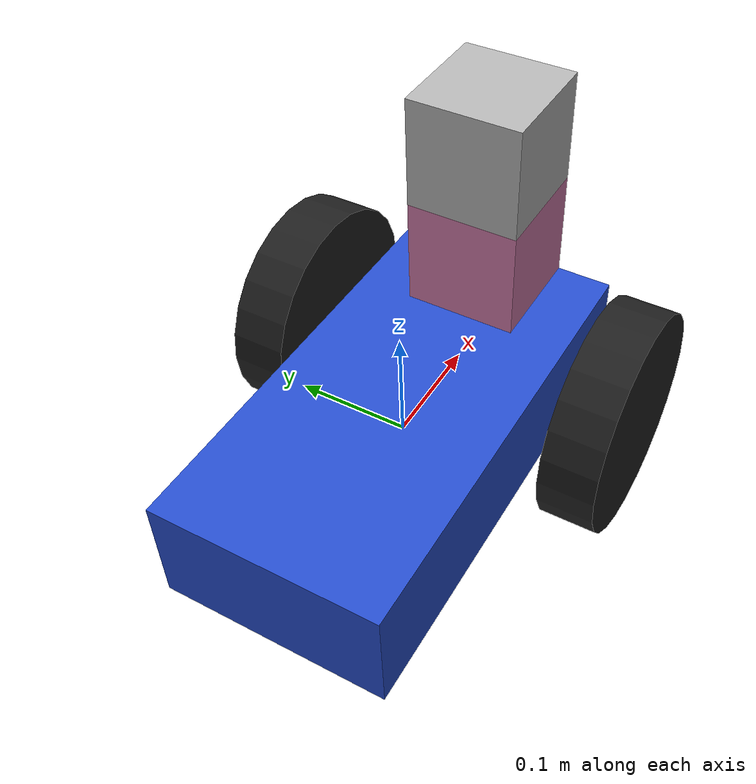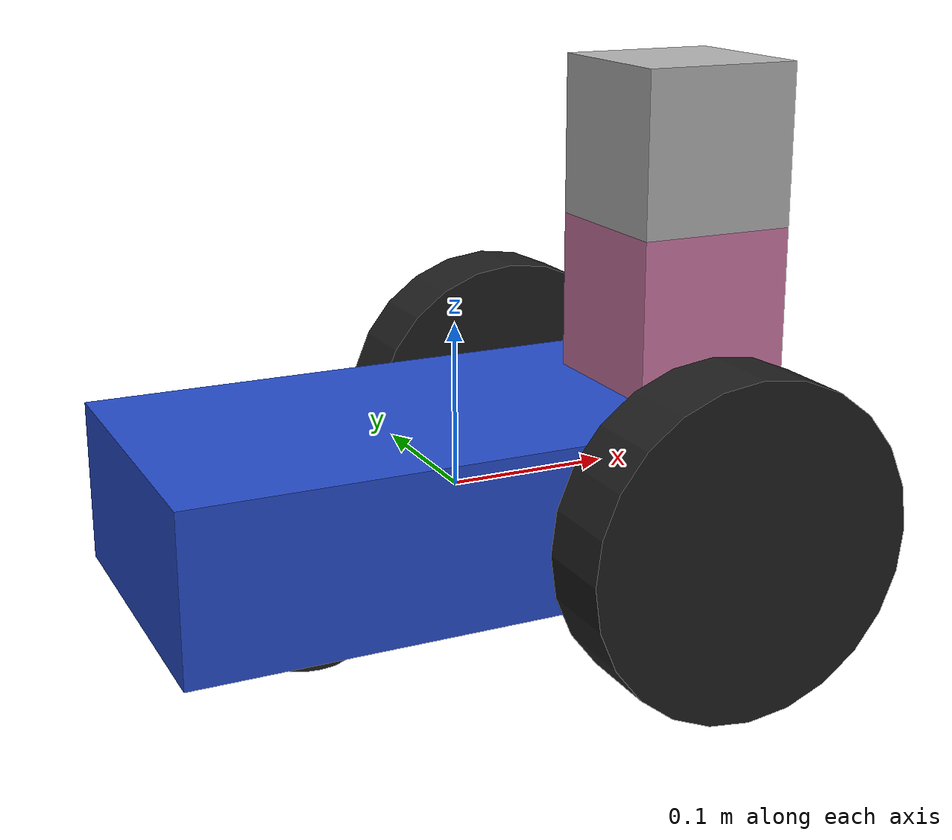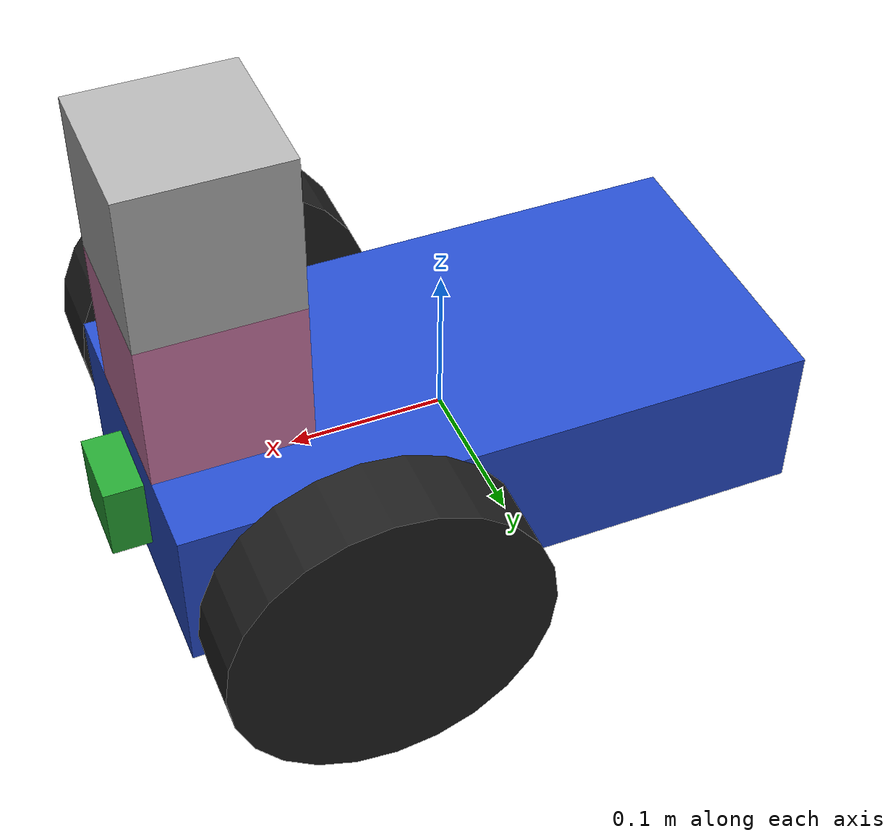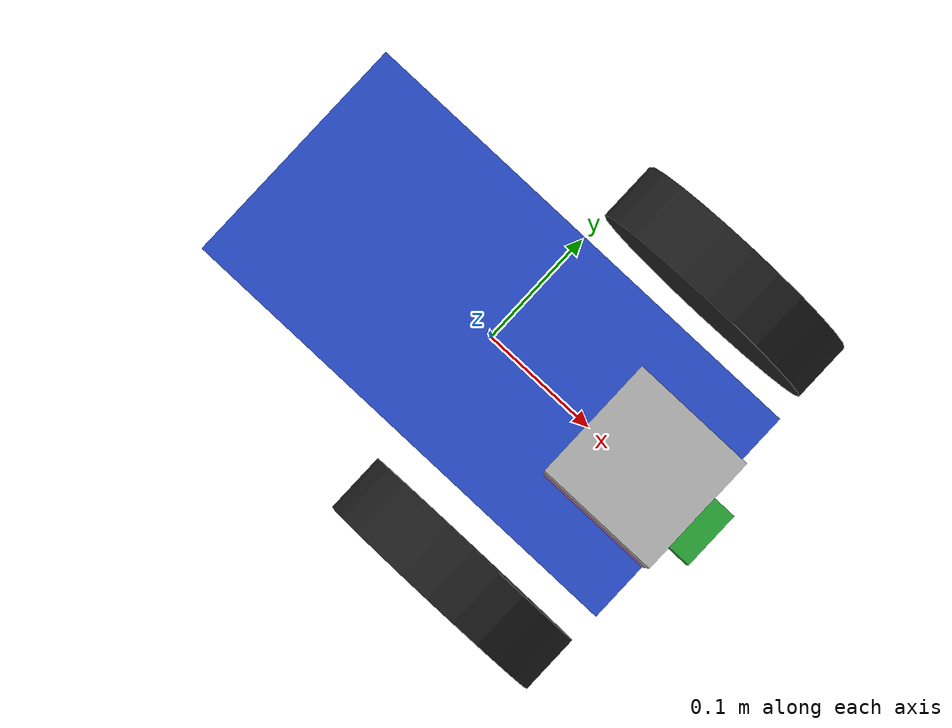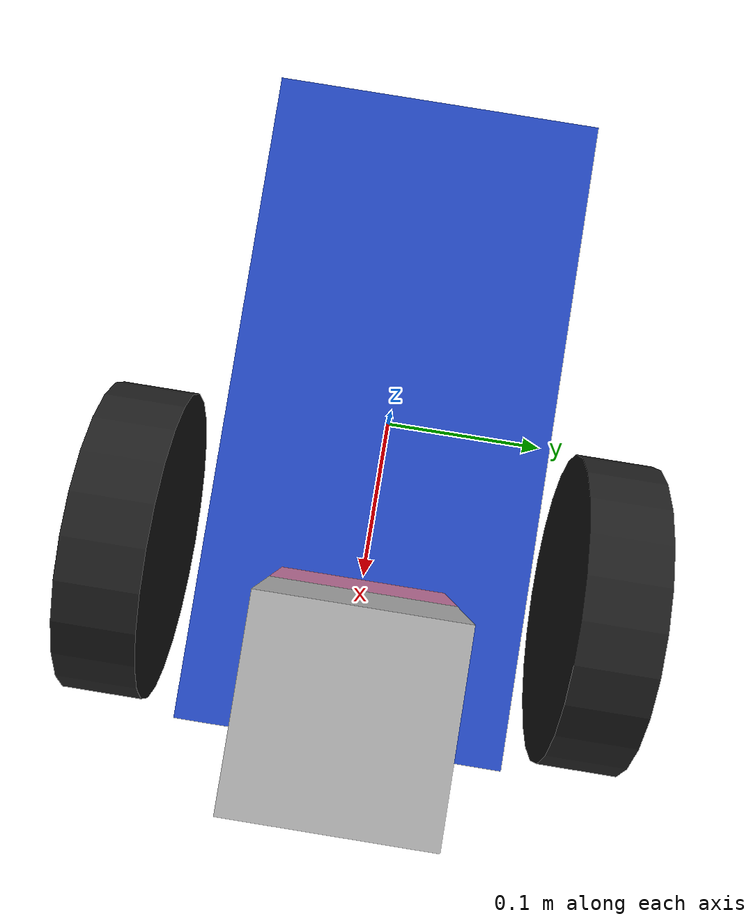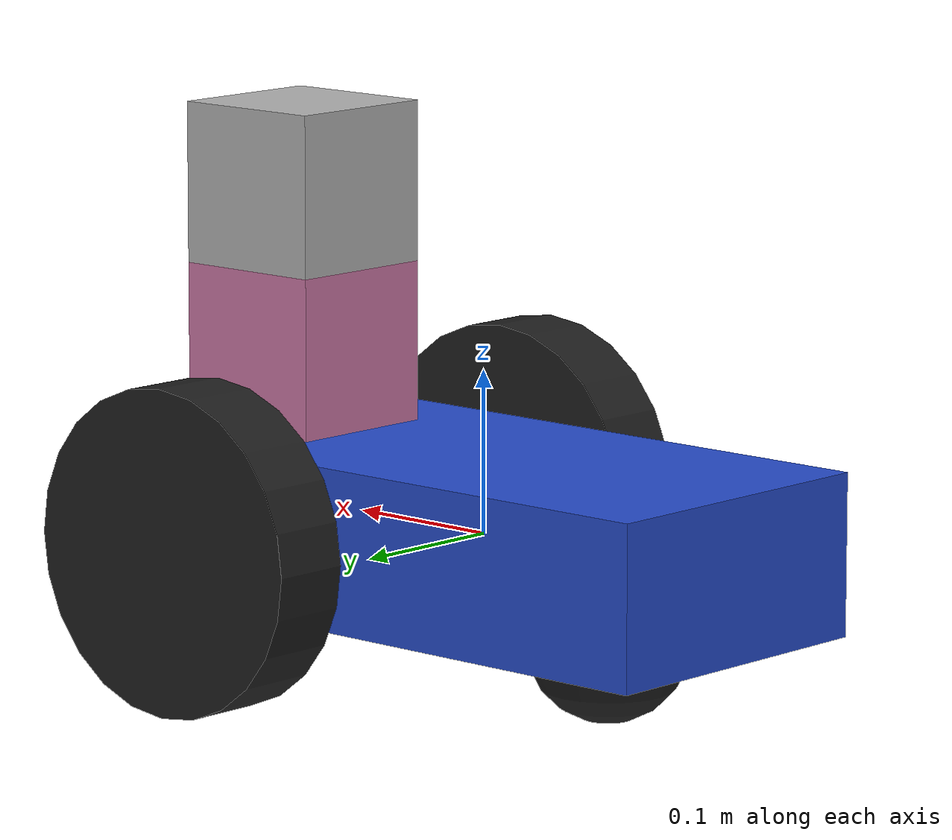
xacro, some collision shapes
<?xml version='1.0'?>

<robot name="myrobot" xmlns:xacro="http://www.ros.org/wiki/xacro">

  <xacro:property name="cameraSize" value="0.05"/>
  <xacro:property name="cameraMass" value="0.01"/>

  <xacro:include filename="$(find mybot_description)/urdf/mybot.gazebo" />
  <xacro:include filename="$(find mybot_description)/urdf/materials.xacro" />
  <xacro:include filename="$(find mybot_description)/urdf/macros.xacro" />

  <link name="chassis">
    <pose>0 0 0.1 0 0 0</pose>
    <inertial>
      <mass value="10.0"/>
      <origin xyz="0.0 0 0.1" rpy=" 0 0 0"/>
      <inertia
          ixx="0.5" ixy="0" ixz="0"
          iyy="1.0" iyz="0"
          izz="0.1"
      />
    </inertial>

    <collision name="collision">
      <geometry>
        <box size=".4 .2 .1"/>
      </geometry>
    </collision>

    <visual name="chassis_visual">
      <origin xyz="0 0 0" rpy=" 0 0 0"/>
      <geometry>
        <box size=".4 .2 .1"/>
      </geometry>
      <material name="blue"/>
    </visual>
  </link>

  <link name="caster_wheel">
    <collision name="caster_collision">
      <origin xyz="0 0 0" rpy=" 0 0 0"/>
      <geometry>
        <sphere radius="0.05"/>
      </geometry>
    </collision>

    <inertial>
      <origin xyz="0 0 0" rpy="0 0 0"/>
      <mass value="0.1"/>
      <inertia
        ixx="0.01" ixy="0.0" ixz="0.0"
        iyy="0.01" iyz="0.0"
        izz="0.01"/>
    </inertial>

    <visual name="caster_visual">
      <origin xyz="0 0 0" rpy=" 0 0 0"/>
      <geometry>
        <sphere radius="0.05"/>
      </geometry>
      <material name="black"/>
    </visual>
  </link>

  <link name="caster_base">
    <collision name="caster_base_collision">
      <origin xyz="0 0 0" rpy=" 0 0 0"/>
      <geometry>
        <sphere radius="0.01"/>
      </geometry>
    </collision>

    <inertial>
      <origin xyz="0 0 0" rpy="0 0 0"/>
      <mass value="1"/>
      <inertia
        ixx="0.01" ixy="0.0" ixz="0.0"
        iyy="0.01" iyz="0.0"
        izz="0.01"/>
    </inertial>

    <visual name="caster_base_visual">
      <origin xyz="0 0 0" rpy=" 0 0 0"/>
      <geometry>
        <sphere radius="0.01"/>
      </geometry>
      <material name="black"/>
    </visual>
  </link>

  <joint name="caster_base_joint" type="continuous">
    <axis xyz="0 1 0" />
    <origin xyz="-0.1 0 -0.05" rpy=" 0 0 0"/>
    <parent link="chassis"/>
    <child link="caster_base"/>
    <joint_properties damping="0.0" friction="0.0"/>
  </joint>

  <joint name="caster_ball_joint" type="continuous">
    <axis xyz="1 0 0" />
    <origin xyz="0 0 0" rpy=" 0 0 0"/>
    <parent link="caster_base"/>
    <child link="caster_wheel"/>
    <joint_properties damping="0.0" friction="0.0"/>
  </joint>

  <link name="left_wheel">
    <!--origin xyz="0.1 0.13 0.1" rpy="0 1.5707 1.5707"/-->
    <collision name="collision">
      <origin xyz="0 0 0" rpy="0 1.5707 1.5707"/>
      <geometry>
        <cylinder radius="0.1" length="0.05"/>
      </geometry>
    </collision>
    <visual name="left_wheel_visual">
      <origin xyz="0 0 0" rpy="0 1.5707 1.5707"/>
      <geometry>
        <cylinder radius="0.1" length="0.05"/>
      </geometry>
      <material name="black"/>
    </visual>
    <inertial>
      <origin xyz="0 0 0" rpy="0 1.5707 1.5707"/>
      <mass value="10"/>
      <cylinder_inertia m="5" r="0.1" h="0.05"/>
      <inertia
        ixx="0.01" ixy="0.0" ixz="0.0"
        iyy="0.01" iyz="0.0"
        izz="0.01"/>
    </inertial>
  </link>

  <link name="right_wheel">
    <!--origin xyz="0.1 -0.13 0.1" rpy="0 1.5707 1.5707"/-->
    <collision name="collision">
      <origin xyz="0 0 0" rpy="0 1.5707 1.5707"/>
      <geometry>
        <cylinder radius="0.1" length="0.05"/>
      </geometry>
    </collision>
    <visual name="right_wheel_visual">
      <origin xyz="0 0 0" rpy="0 1.5707 1.5707"/>
      <geometry>
        <cylinder radius="0.1" length="0.05"/>
      </geometry>
      <material name="black"/>
    </visual>
    <inertial>
      <origin xyz="0 0 0" rpy="0 1.5707 1.5707"/>
      <mass value="10"/>
      <cylinder_inertia m="5" r="0.1" h="0.05"/>
      <inertia
        ixx="0.01" ixy="0.0" ixz="0.0"
        iyy="0.01" iyz="0.0"
        izz="0.01"/>
    </inertial>
  </link>

  <joint type="continuous" name="left_wheel_hinge">
    <origin xyz="0.1 0.15 0" rpy="0 0 0"/>
    <child link="left_wheel"/>
    <parent link="chassis"/>
    <axis xyz="0 1 0" rpy="0 0 0"/>
    <limit effort="100" velocity="100"/>
    <joint_properties damping="0.0" friction="0.0"/>
  </joint>

  <joint type="continuous" name="right_wheel_hinge">
    <origin xyz="0.1 -0.15 0" rpy="0 0 0"/>
    <child link="right_wheel"/>
    <parent link="chassis"/>
    <axis xyz="0 1 0" rpy="0 0 0"/>
    <limit effort="100" velocity="100"/>
    <joint_properties damping="0.0" friction="0.0"/>
  </joint>

  <link name="camera">
    <collision>
      <origin xyz="0 0 0" rpy="0 0 0"/>
      <geometry>
        <box size="${cameraSize} ${cameraSize} ${cameraSize}"/>
      </geometry>
    </collision>

    <visual>
      <origin xyz="0 0 0" rpy="0 0 0"/>
      <geometry>
        <box size="${cameraSize} ${cameraSize} ${cameraSize}"/>
      </geometry>
      <material name="green"/>
    </visual>

    <inertial>
      <mass value="${cameraMass}" />
      <origin xyz="0 0 0" rpy="0 0 0"/>
      <box_inertia m="${cameraMass}" x="${cameraSize}" y="${cameraSize}" z="${cameraSize}" />
      <inertia ixx="1e-6" ixy="0" ixz="0" iyy="1e-6" iyz="0" izz="1e-6" />
    </inertial>
  </link>

  <joint name="camera_joint" type="fixed">
    <axis xyz="0 1 0" />
    <origin xyz=".2 0 0" rpy="0 0 0"/>
    <parent link="chassis"/>
    <child link="camera"/>
  </joint>

  <!-- Hokuyo Laser -->
  <link name="hokuyo">
    <collision>
      <origin xyz="0 0 0" rpy="0 0 0"/>
      <geometry>
    <box size="0.1 0.1 0.1"/>
      </geometry>
    </collision>

    <visual>
      <origin xyz="0 0 0" rpy="0 0 0"/>
      <geometry>
        <mesh filename="package://mybot_description/meshes/hokuyo.dae"/>
      </geometry>
    </visual>

    <inertial>
      <mass value="1e-5" />
      <origin xyz="0 0 0" rpy="0 0 0"/>
      <inertia ixx="1e-6" ixy="0" ixz="0" iyy="1e-6" iyz="0" izz="1e-6" />
    </inertial>
  </link>

  <joint name="hokuyo_joint" type="fixed">
    <axis xyz="0 1 0" />
    <origin xyz=".15 0 .1" rpy="0 0 0"/>
    <parent link="chassis"/>
    <child link="hokuyo"/>
  </joint>

  <!-- Kinect -->
  <link name="kinect">
    <collision>
    <origin xyz="0 0 0" rpy="0 0 0"/>
      <geometry>
    <box size="0.1 0.1 0.1"/>
      </geometry>
    </collision>

    <visual>
      <origin xyz="0 0 0" rpy="0 0 1.5707"/>
      <geometry>
        <mesh filename="package://mybot_description/meshes/kinect.dae"/>
      </geometry>
    </visual>

    <inertial>
      <mass value="1e-4" />
      <origin xyz="0 0 0" rpy="0 0 0"/>
      <inertia ixx="1e-5" ixy="0" ixz="0" iyy="1e-6" iyz="0" izz="1e-5" />
    </inertial>
  </link>

  <joint name="kinect_joint" type="fixed">
    <axis xyz="0 1 0" />
    <origin xyz=".15 0 .2" rpy="0 0 0"/>
    <parent link="chassis"/>
    <child link="kinect"/>
  </joint>

  <link name="DepthFrame"></link>

  <joint name="DepthFrame_joint" type="fixed">
    <origin xyz="0 0 0" rpy="-1.5707 0 -1.5707 "/>
    <parent link="kinect"/>
    <child link="DepthFrame"/>
  </joint>

</robot>
